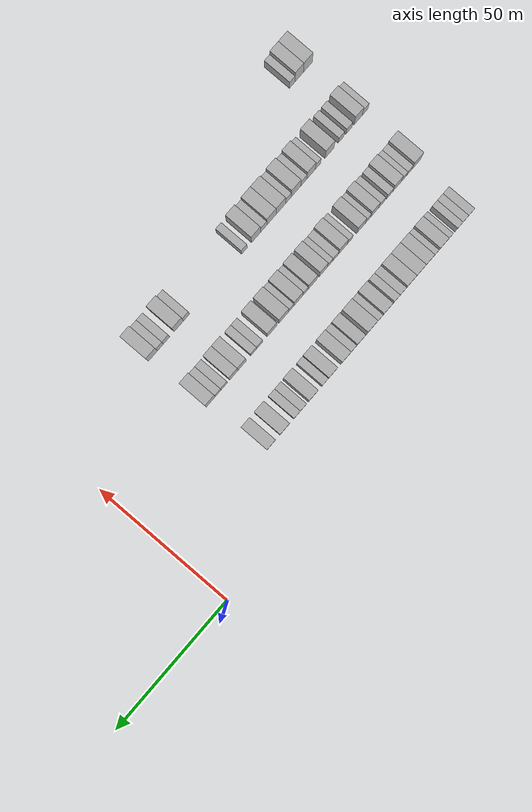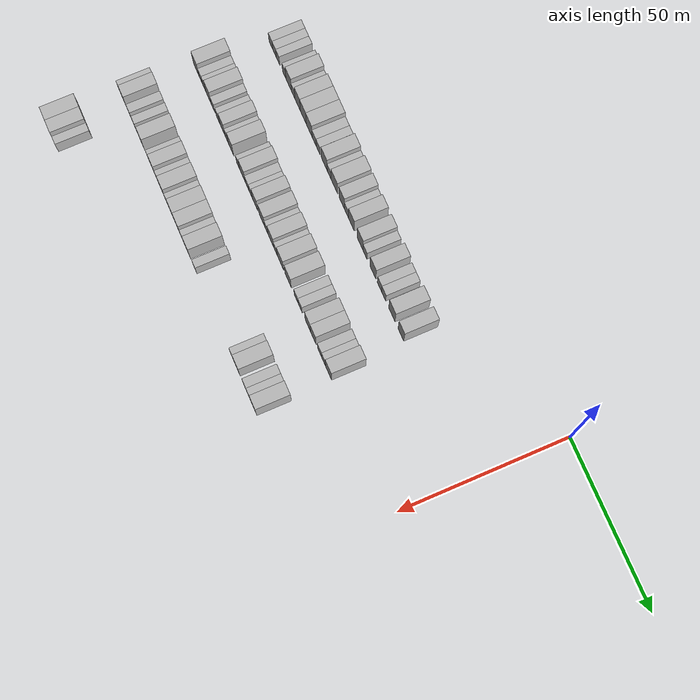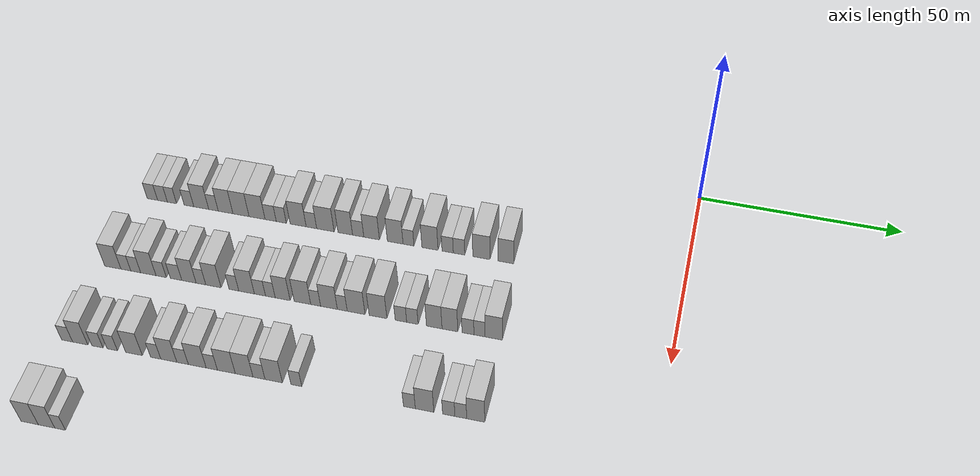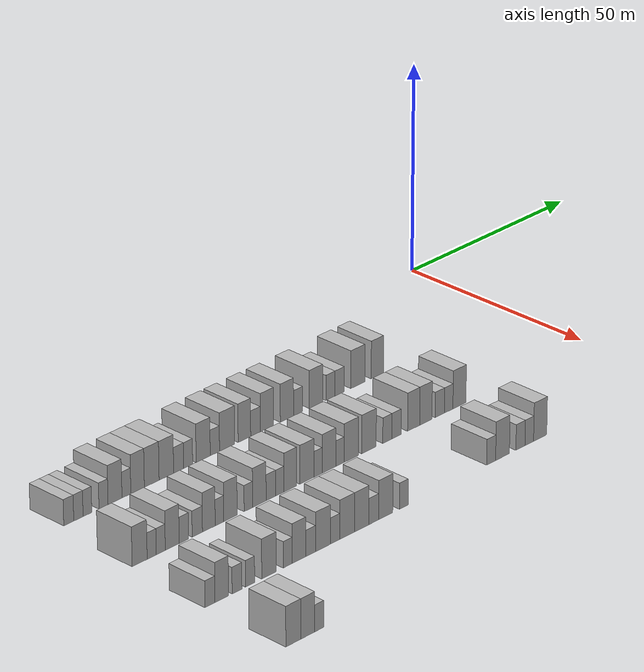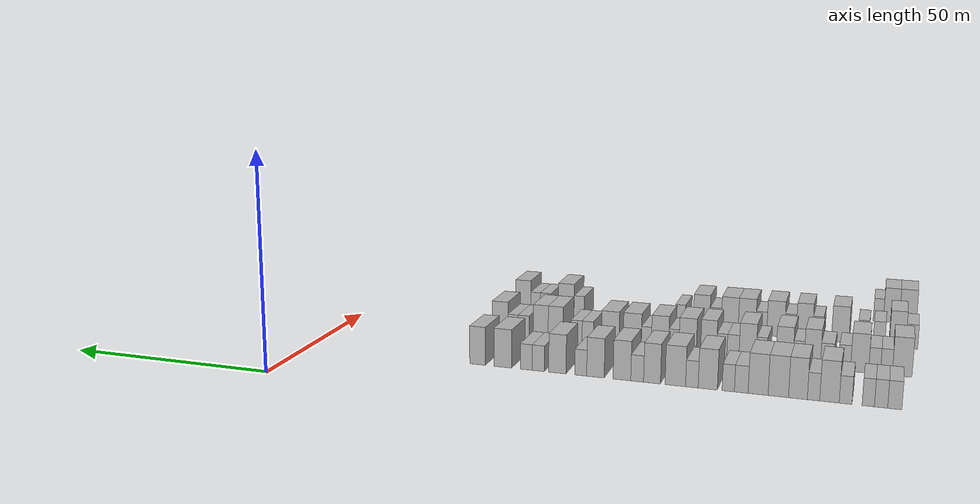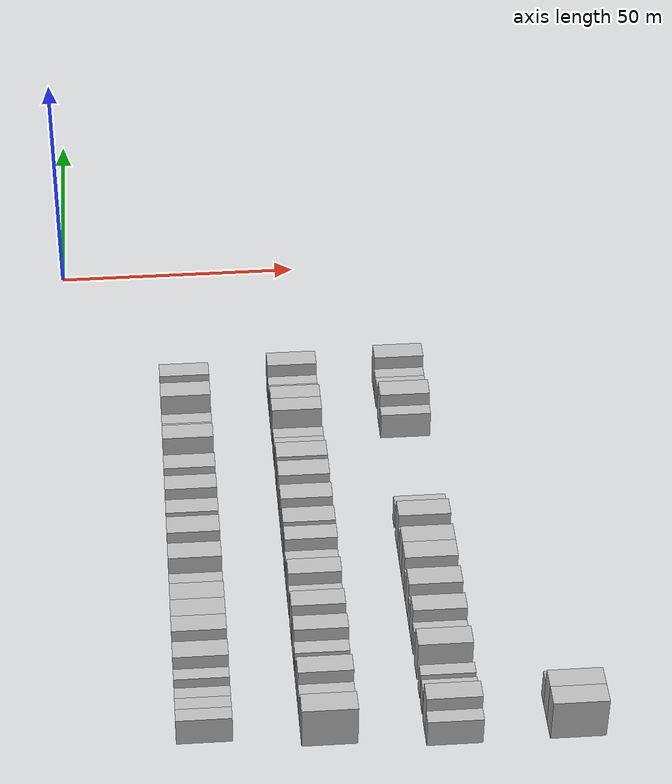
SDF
<sdf version="1.6">
 <world name="default">
  <model name="building_61">
   <static>1</static>
   <pose>25.0000 -133.7272 0 0.000000 0.000000 0.000000</pose>
   <link name="link">
    <pose>0 0 3.00 0 0 0</pose>
    <collision name="collision"><geometry><box><size>10.0000 2.7626 6.0000</size></box></geometry></collision>
    <visual name="visual">
     <cast_shadows>0</cast_shadows>
     <geometry><box><size>10.0000 2.7626 6.0000</size></box></geometry>
     <material>
      <script>
       <uri>model://HANNAS_wall/materials/scripts</uri>
       <uri>model://HANNAS_wall/materials/textures</uri>
       <name>vrc/HANNAS_wall</name>
      </script>
     </material>
    </visual>
   </link>
  </model>
  <model name="building_62">
   <static>1</static>
   <pose>25.0000 -131.0476 0 0.000000 0.000000 0.000000</pose>
   <link name="link">
    <pose>0 0 3.00 0 0 0</pose>
    <collision name="collision"><geometry><box><size>10.0000 2.5966 6.0000</size></box></geometry></collision>
    <visual name="visual">
     <cast_shadows>0</cast_shadows>
     <geometry><box><size>10.0000 2.5966 6.0000</size></box></geometry>
     <material>
      <script>
       <uri>model://HANNAS_wall/materials/scripts</uri>
       <uri>model://HANNAS_wall/materials/textures</uri>
       <name>vrc/HANNAS_wall</name>
      </script>
     </material>
    </visual>
   </link>
  </model>
  <model name="building_63">
   <static>1</static>
   <pose>25.0000 -128.5326 0 0.000000 0.000000 0.000000</pose>
   <link name="link">
    <pose>0 0 3.00 0 0 0</pose>
    <collision name="collision"><geometry><box><size>10.0000 2.4334 6.0000</size></box></geometry></collision>
    <visual name="visual">
     <cast_shadows>0</cast_shadows>
     <geometry><box><size>10.0000 2.4334 6.0000</size></box></geometry>
     <material>
      <script>
       <uri>model://HANNAS_wall/materials/scripts</uri>
       <uri>model://HANNAS_wall/materials/textures</uri>
       <name>vrc/HANNAS_wall</name>
      </script>
     </material>
    </visual>
   </link>
  </model>
  <model name="building_64">
   <static>1</static>
   <pose>25.0000 -124.0404 0 0.000000 0.000000 0.000000</pose>
   <link name="link">
    <pose>0 0 3.00 0 0 0</pose>
    <collision name="collision"><geometry><box><size>10.0000 2.5510 6.0000</size></box></geometry></collision>
    <visual name="visual">
     <cast_shadows>0</cast_shadows>
     <geometry><box><size>10.0000 2.5510 6.0000</size></box></geometry>
     <material>
      <script>
       <uri>model://HANNAS_wall/materials/scripts</uri>
       <uri>model://HANNAS_wall/materials/textures</uri>
       <name>vrc/HANNAS_wall</name>
      </script>
     </material>
    </visual>
   </link>
  </model>
  <model name="building_65">
   <static>1</static>
   <pose>25.0000 -120.8016 0 0.000000 0.000000 0.000000</pose>
   <link name="link">
    <pose>0 0 4.50 0 0 0</pose>
    <collision name="collision"><geometry><box><size>10.0000 3.9264 9.0000</size></box></geometry></collision>
    <visual name="visual">
     <cast_shadows>0</cast_shadows>
     <geometry><box><size>10.0000 3.9264 9.0000</size></box></geometry>
     <material>
      <script>
       <uri>model://HANNAS_wall/materials/scripts</uri>
       <uri>model://HANNAS_wall/materials/textures</uri>
       <name>vrc/HANNAS_wall</name>
      </script>
     </material>
    </visual>
   </link>
  </model>
  <model name="building_66">
   <static>1</static>
   <pose>25.0000 -117.5861 0 0.000000 0.000000 0.000000</pose>
   <link name="link">
    <pose>0 0 3.00 0 0 0</pose>
    <collision name="collision"><geometry><box><size>10.0000 2.5047 6.0000</size></box></geometry></collision>
    <visual name="visual">
     <cast_shadows>0</cast_shadows>
     <geometry><box><size>10.0000 2.5047 6.0000</size></box></geometry>
     <material>
      <script>
       <uri>model://HANNAS_wall/materials/scripts</uri>
       <uri>model://HANNAS_wall/materials/textures</uri>
       <name>vrc/HANNAS_wall</name>
      </script>
     </material>
    </visual>
   </link>
  </model>
  <model name="building_67">
   <static>1</static>
   <pose>25.0000 -114.4111 0 0.000000 0.000000 0.000000</pose>
   <link name="link">
    <pose>0 0 4.50 0 0 0</pose>
    <collision name="collision"><geometry><box><size>10.0000 3.8452 9.0000</size></box></geometry></collision>
    <visual name="visual">
     <cast_shadows>0</cast_shadows>
     <geometry><box><size>10.0000 3.8452 9.0000</size></box></geometry>
     <material>
      <script>
       <uri>model://HANNAS_wall/materials/scripts</uri>
       <uri>model://HANNAS_wall/materials/textures</uri>
       <name>vrc/HANNAS_wall</name>
      </script>
     </material>
    </visual>
   </link>
  </model>
  <model name="building_68">
   <static>1</static>
   <pose>25.0000 -110.3851 0 0.000000 0.000000 0.000000</pose>
   <link name="link">
    <pose>0 0 4.50 0 0 0</pose>
    <collision name="collision"><geometry><box><size>10.0000 4.2068 9.0000</size></box></geometry></collision>
    <visual name="visual">
     <cast_shadows>0</cast_shadows>
     <geometry><box><size>10.0000 4.2068 9.0000</size></box></geometry>
     <material>
      <script>
       <uri>model://HANNAS_wall/materials/scripts</uri>
       <uri>model://HANNAS_wall/materials/textures</uri>
       <name>vrc/HANNAS_wall</name>
      </script>
     </material>
    </visual>
   </link>
  </model>
  <model name="building_69">
   <static>1</static>
   <pose>25.0000 -106.1957 0 0.000000 0.000000 0.000000</pose>
   <link name="link">
    <pose>0 0 4.50 0 0 0</pose>
    <collision name="collision"><geometry><box><size>10.0000 4.1720 9.0000</size></box></geometry></collision>
    <visual name="visual">
     <cast_shadows>0</cast_shadows>
     <geometry><box><size>10.0000 4.1720 9.0000</size></box></geometry>
     <material>
      <script>
       <uri>model://HANNAS_wall/materials/scripts</uri>
       <uri>model://HANNAS_wall/materials/textures</uri>
       <name>vrc/HANNAS_wall</name>
      </script>
     </material>
    </visual>
   </link>
  </model>
  <model name="building_70">
   <static>1</static>
   <pose>25.0000 -102.6644 0 0.000000 0.000000 0.000000</pose>
   <link name="link">
    <pose>0 0 3.00 0 0 0</pose>
    <collision name="collision"><geometry><box><size>10.0000 2.8907 6.0000</size></box></geometry></collision>
    <visual name="visual">
     <cast_shadows>0</cast_shadows>
     <geometry><box><size>10.0000 2.8907 6.0000</size></box></geometry>
     <material>
      <script>
       <uri>model://HANNAS_wall/materials/scripts</uri>
       <uri>model://HANNAS_wall/materials/textures</uri>
       <name>vrc/HANNAS_wall</name>
      </script>
     </material>
    </visual>
   </link>
  </model>
  <model name="building_71">
   <static>1</static>
   <pose>25.0000 -99.9164 0 0.000000 0.000000 0.000000</pose>
   <link name="link">
    <pose>0 0 3.00 0 0 0</pose>
    <collision name="collision"><geometry><box><size>10.0000 2.6051 6.0000</size></box></geometry></collision>
    <visual name="visual">
     <cast_shadows>0</cast_shadows>
     <geometry><box><size>10.0000 2.6051 6.0000</size></box></geometry>
     <material>
      <script>
       <uri>model://HANNAS_wall/materials/scripts</uri>
       <uri>model://HANNAS_wall/materials/textures</uri>
       <name>vrc/HANNAS_wall</name>
      </script>
     </material>
    </visual>
   </link>
  </model>
  <model name="building_72">
   <static>1</static>
   <pose>25.0000 -95.5557 0 0.000000 0.000000 0.000000</pose>
   <link name="link">
    <pose>0 0 4.50 0 0 0</pose>
    <collision name="collision"><geometry><box><size>10.0000 4.1163 9.0000</size></box></geometry></collision>
    <visual name="visual">
     <cast_shadows>0</cast_shadows>
     <geometry><box><size>10.0000 4.1163 9.0000</size></box></geometry>
     <material>
      <script>
       <uri>model://HANNAS_wall/materials/scripts</uri>
       <uri>model://HANNAS_wall/materials/textures</uri>
       <name>vrc/HANNAS_wall</name>
      </script>
     </material>
    </visual>
   </link>
  </model>
  <model name="building_73">
   <static>1</static>
   <pose>25.0000 -92.1414 0 0.000000 0.000000 0.000000</pose>
   <link name="link">
    <pose>0 0 3.00 0 0 0</pose>
    <collision name="collision"><geometry><box><size>10.0000 2.7124 6.0000</size></box></geometry></collision>
    <visual name="visual">
     <cast_shadows>0</cast_shadows>
     <geometry><box><size>10.0000 2.7124 6.0000</size></box></geometry>
     <material>
      <script>
       <uri>model://HANNAS_wall/materials/scripts</uri>
       <uri>model://HANNAS_wall/materials/textures</uri>
       <name>vrc/HANNAS_wall</name>
      </script>
     </material>
    </visual>
   </link>
  </model>
  <model name="building_74">
   <static>1</static>
   <pose>25.0000 -88.5490 0 0.000000 0.000000 0.000000</pose>
   <link name="link">
    <pose>0 0 4.50 0 0 0</pose>
    <collision name="collision"><geometry><box><size>10.0000 4.4723 9.0000</size></box></geometry></collision>
    <visual name="visual">
     <cast_shadows>0</cast_shadows>
     <geometry><box><size>10.0000 4.4723 9.0000</size></box></geometry>
     <material>
      <script>
       <uri>model://HANNAS_wall/materials/scripts</uri>
       <uri>model://HANNAS_wall/materials/textures</uri>
       <name>vrc/HANNAS_wall</name>
      </script>
     </material>
    </visual>
   </link>
  </model>
  <model name="building_75">
   <static>1</static>
   <pose>25.0000 -83.4534 0 0.000000 0.000000 0.000000</pose>
   <link name="link">
    <pose>0 0 4.50 0 0 0</pose>
    <collision name="collision"><geometry><box><size>10.0000 3.7190 9.0000</size></box></geometry></collision>
    <visual name="visual">
     <cast_shadows>0</cast_shadows>
     <geometry><box><size>10.0000 3.7190 9.0000</size></box></geometry>
     <material>
      <script>
       <uri>model://HANNAS_wall/materials/scripts</uri>
       <uri>model://HANNAS_wall/materials/textures</uri>
       <name>vrc/HANNAS_wall</name>
      </script>
     </material>
    </visual>
   </link>
  </model>
  <model name="building_76">
   <static>1</static>
   <pose>25.0000 -80.1654 0 0.000000 0.000000 0.000000</pose>
   <link name="link">
    <pose>0 0 3.00 0 0 0</pose>
    <collision name="collision"><geometry><box><size>10.0000 2.8569 6.0000</size></box></geometry></collision>
    <visual name="visual">
     <cast_shadows>0</cast_shadows>
     <geometry><box><size>10.0000 2.8569 6.0000</size></box></geometry>
     <material>
      <script>
       <uri>model://HANNAS_wall/materials/scripts</uri>
       <uri>model://HANNAS_wall/materials/textures</uri>
       <name>vrc/HANNAS_wall</name>
      </script>
     </material>
    </visual>
   </link>
  </model>
  <model name="building_77">
   <static>1</static>
   <pose>25.0000 -76.7515 0 0.000000 0.000000 0.000000</pose>
   <link name="link">
    <pose>0 0 4.50 0 0 0</pose>
    <collision name="collision"><geometry><box><size>10.0000 3.9710 9.0000</size></box></geometry></collision>
    <visual name="visual">
     <cast_shadows>0</cast_shadows>
     <geometry><box><size>10.0000 3.9710 9.0000</size></box></geometry>
     <material>
      <script>
       <uri>model://HANNAS_wall/materials/scripts</uri>
       <uri>model://HANNAS_wall/materials/textures</uri>
       <name>vrc/HANNAS_wall</name>
      </script>
     </material>
    </visual>
   </link>
  </model>
  <model name="building_78">
   <static>1</static>
   <pose>25.0000 -70.7760 0 0.000000 0.000000 0.000000</pose>
   <link name="link">
    <pose>0 0 4.50 0 0 0</pose>
    <collision name="collision"><geometry><box><size>10.0000 3.9799 9.0000</size></box></geometry></collision>
    <visual name="visual">
     <cast_shadows>0</cast_shadows>
     <geometry><box><size>10.0000 3.9799 9.0000</size></box></geometry>
     <material>
      <script>
       <uri>model://HANNAS_wall/materials/scripts</uri>
       <uri>model://HANNAS_wall/materials/textures</uri>
       <name>vrc/HANNAS_wall</name>
      </script>
     </material>
    </visual>
   </link>
  </model>
  <model name="building_79">
   <static>1</static>
   <pose>25.0000 -67.4149 0 0.000000 0.000000 0.000000</pose>
   <link name="link">
    <pose>0 0 3.00 0 0 0</pose>
    <collision name="collision"><geometry><box><size>10.0000 2.7422 6.0000</size></box></geometry></collision>
    <visual name="visual">
     <cast_shadows>0</cast_shadows>
     <geometry><box><size>10.0000 2.7422 6.0000</size></box></geometry>
     <material>
      <script>
       <uri>model://HANNAS_wall/materials/scripts</uri>
       <uri>model://HANNAS_wall/materials/textures</uri>
       <name>vrc/HANNAS_wall</name>
      </script>
     </material>
    </visual>
   </link>
  </model>
  <model name="building_80">
   <static>1</static>
   <pose>25.0000 -62.0194 0 0.000000 0.000000 0.000000</pose>
   <link name="link">
    <pose>0 0 4.50 0 0 0</pose>
    <collision name="collision"><geometry><box><size>10.0000 4.0489 9.0000</size></box></geometry></collision>
    <visual name="visual">
     <cast_shadows>0</cast_shadows>
     <geometry><box><size>10.0000 4.0489 9.0000</size></box></geometry>
     <material>
      <script>
       <uri>model://HANNAS_wall/materials/scripts</uri>
       <uri>model://HANNAS_wall/materials/textures</uri>
       <name>vrc/HANNAS_wall</name>
      </script>
     </material>
    </visual>
   </link>
  </model>
  <model name="building_81">
   <static>1</static>
   <pose>25.0000 -57.5845 0 0.000000 0.000000 0.000000</pose>
   <link name="link">
    <pose>0 0 3.00 0 0 0</pose>
    <collision name="collision"><geometry><box><size>10.0000 2.8207 6.0000</size></box></geometry></collision>
    <visual name="visual">
     <cast_shadows>0</cast_shadows>
     <geometry><box><size>10.0000 2.8207 6.0000</size></box></geometry>
     <material>
      <script>
       <uri>model://HANNAS_wall/materials/scripts</uri>
       <uri>model://HANNAS_wall/materials/textures</uri>
       <name>vrc/HANNAS_wall</name>
      </script>
     </material>
    </visual>
   </link>
  </model>
  <model name="building_82">
   <static>1</static>
   <pose>25.0000 -54.7447 0 0.000000 0.000000 0.000000</pose>
   <link name="link">
    <pose>0 0 3.00 0 0 0</pose>
    <collision name="collision"><geometry><box><size>10.0000 2.8589 6.0000</size></box></geometry></collision>
    <visual name="visual">
     <cast_shadows>0</cast_shadows>
     <geometry><box><size>10.0000 2.8589 6.0000</size></box></geometry>
     <material>
      <script>
       <uri>model://HANNAS_wall/materials/scripts</uri>
       <uri>model://HANNAS_wall/materials/textures</uri>
       <name>vrc/HANNAS_wall</name>
      </script>
     </material>
    </visual>
   </link>
  </model>
  <model name="building_83">
   <static>1</static>
   <pose>25.0000 -49.1723 0 0.000000 0.000000 0.000000</pose>
   <link name="link">
    <pose>0 0 4.50 0 0 0</pose>
    <collision name="collision"><geometry><box><size>10.0000 4.2861 9.0000</size></box></geometry></collision>
    <visual name="visual">
     <cast_shadows>0</cast_shadows>
     <geometry><box><size>10.0000 4.2861 9.0000</size></box></geometry>
     <material>
      <script>
       <uri>model://HANNAS_wall/materials/scripts</uri>
       <uri>model://HANNAS_wall/materials/textures</uri>
       <name>vrc/HANNAS_wall</name>
      </script>
     </material>
    </visual>
   </link>
  </model>
  <model name="building_84">
   <static>1</static>
   <pose>25.0000 -43.1173 0 0.000000 0.000000 0.000000</pose>
   <link name="link">
    <pose>0 0 4.50 0 0 0</pose>
    <collision name="collision"><geometry><box><size>10.0000 3.8238 9.0000</size></box></geometry></collision>
    <visual name="visual">
     <cast_shadows>0</cast_shadows>
     <geometry><box><size>10.0000 3.8238 9.0000</size></box></geometry>
     <material>
      <script>
       <uri>model://HANNAS_wall/materials/scripts</uri>
       <uri>model://HANNAS_wall/materials/textures</uri>
       <name>vrc/HANNAS_wall</name>
      </script>
     </material>
    </visual>
   </link>
  </model>
  <model name="building_236">
   <static>1</static>
   <pose>47.0000 -135.1184 0 0.000000 0.000000 0.000000</pose>
   <link name="link">
    <pose>0 0 4.50 0 0 0</pose>
    <collision name="collision"><geometry><box><size>10.0000 4.1535 9.0000</size></box></geometry></collision>
    <visual name="visual">
     <cast_shadows>0</cast_shadows>
     <geometry><box><size>10.0000 4.1535 9.0000</size></box></geometry>
     <material>
      <script>
       <uri>model://HANNAS_wall/materials/scripts</uri>
       <uri>model://HANNAS_wall/materials/textures</uri>
       <name>vrc/HANNAS_wall</name>
      </script>
     </material>
    </visual>
   </link>
  </model>
  <model name="building_237">
   <static>1</static>
   <pose>47.0000 -131.7829 0 0.000000 0.000000 0.000000</pose>
   <link name="link">
    <pose>0 0 3.00 0 0 0</pose>
    <collision name="collision"><geometry><box><size>10.0000 2.5176 6.0000</size></box></geometry></collision>
    <visual name="visual">
     <cast_shadows>0</cast_shadows>
     <geometry><box><size>10.0000 2.5176 6.0000</size></box></geometry>
     <material>
      <script>
       <uri>model://HANNAS_wall/materials/scripts</uri>
       <uri>model://HANNAS_wall/materials/textures</uri>
       <name>vrc/HANNAS_wall</name>
      </script>
     </material>
    </visual>
   </link>
  </model>
  <model name="building_238">
   <static>1</static>
   <pose>47.0000 -129.2609 0 0.000000 0.000000 0.000000</pose>
   <link name="link">
    <pose>0 0 3.00 0 0 0</pose>
    <collision name="collision"><geometry><box><size>10.0000 2.5264 6.0000</size></box></geometry></collision>
    <visual name="visual">
     <cast_shadows>0</cast_shadows>
     <geometry><box><size>10.0000 2.5264 6.0000</size></box></geometry>
     <material>
      <script>
       <uri>model://HANNAS_wall/materials/scripts</uri>
       <uri>model://HANNAS_wall/materials/textures</uri>
       <name>vrc/HANNAS_wall</name>
      </script>
     </material>
    </visual>
   </link>
  </model>
  <model name="building_239">
   <static>1</static>
   <pose>47.0000 -126.0531 0 0.000000 0.000000 0.000000</pose>
   <link name="link">
    <pose>0 0 4.50 0 0 0</pose>
    <collision name="collision"><geometry><box><size>10.0000 3.8892 9.0000</size></box></geometry></collision>
    <visual name="visual">
     <cast_shadows>0</cast_shadows>
     <geometry><box><size>10.0000 3.8892 9.0000</size></box></geometry>
     <material>
      <script>
       <uri>model://HANNAS_wall/materials/scripts</uri>
       <uri>model://HANNAS_wall/materials/textures</uri>
       <name>vrc/HANNAS_wall</name>
      </script>
     </material>
    </visual>
   </link>
  </model>
  <model name="building_240">
   <static>1</static>
   <pose>47.0000 -122.7889 0 0.000000 0.000000 0.000000</pose>
   <link name="link">
    <pose>0 0 3.00 0 0 0</pose>
    <collision name="collision"><geometry><box><size>10.0000 2.6392 6.0000</size></box></geometry></collision>
    <visual name="visual">
     <cast_shadows>0</cast_shadows>
     <geometry><box><size>10.0000 2.6392 6.0000</size></box></geometry>
     <material>
      <script>
       <uri>model://HANNAS_wall/materials/scripts</uri>
       <uri>model://HANNAS_wall/materials/textures</uri>
       <name>vrc/HANNAS_wall</name>
      </script>
     </material>
    </visual>
   </link>
  </model>
  <model name="building_241">
   <static>1</static>
   <pose>47.0000 -119.0150 0 0.000000 0.000000 0.000000</pose>
   <link name="link">
    <pose>0 0 3.00 0 0 0</pose>
    <collision name="collision"><geometry><box><size>10.0000 2.9087 6.0000</size></box></geometry></collision>
    <visual name="visual">
     <cast_shadows>0</cast_shadows>
     <geometry><box><size>10.0000 2.9087 6.0000</size></box></geometry>
     <material>
      <script>
       <uri>model://HANNAS_wall/materials/scripts</uri>
       <uri>model://HANNAS_wall/materials/textures</uri>
       <name>vrc/HANNAS_wall</name>
      </script>
     </material>
    </visual>
   </link>
  </model>
  <model name="building_242">
   <static>1</static>
   <pose>47.0000 -115.7509 0 0.000000 0.000000 0.000000</pose>
   <link name="link">
    <pose>0 0 4.50 0 0 0</pose>
    <collision name="collision"><geometry><box><size>10.0000 3.6196 9.0000</size></box></geometry></collision>
    <visual name="visual">
     <cast_shadows>0</cast_shadows>
     <geometry><box><size>10.0000 3.6196 9.0000</size></box></geometry>
     <material>
      <script>
       <uri>model://HANNAS_wall/materials/scripts</uri>
       <uri>model://HANNAS_wall/materials/textures</uri>
       <name>vrc/HANNAS_wall</name>
      </script>
     </material>
    </visual>
   </link>
  </model>
  <model name="building_243">
   <static>1</static>
   <pose>47.0000 -112.7212 0 0.000000 0.000000 0.000000</pose>
   <link name="link">
    <pose>0 0 3.00 0 0 0</pose>
    <collision name="collision"><geometry><box><size>10.0000 2.4398 6.0000</size></box></geometry></collision>
    <visual name="visual">
     <cast_shadows>0</cast_shadows>
     <geometry><box><size>10.0000 2.4398 6.0000</size></box></geometry>
     <material>
      <script>
       <uri>model://HANNAS_wall/materials/scripts</uri>
       <uri>model://HANNAS_wall/materials/textures</uri>
       <name>vrc/HANNAS_wall</name>
      </script>
     </material>
    </visual>
   </link>
  </model>
  <model name="building_244">
   <static>1</static>
   <pose>47.0000 -109.5826 0 0.000000 0.000000 0.000000</pose>
   <link name="link">
    <pose>0 0 4.50 0 0 0</pose>
    <collision name="collision"><geometry><box><size>10.0000 3.8373 9.0000</size></box></geometry></collision>
    <visual name="visual">
     <cast_shadows>0</cast_shadows>
     <geometry><box><size>10.0000 3.8373 9.0000</size></box></geometry>
     <material>
      <script>
       <uri>model://HANNAS_wall/materials/scripts</uri>
       <uri>model://HANNAS_wall/materials/textures</uri>
       <name>vrc/HANNAS_wall</name>
      </script>
     </material>
    </visual>
   </link>
  </model>
  <model name="building_245">
   <static>1</static>
   <pose>47.0000 -104.4472 0 0.000000 0.000000 0.000000</pose>
   <link name="link">
    <pose>0 0 3.00 0 0 0</pose>
    <collision name="collision"><geometry><box><size>10.0000 2.4336 6.0000</size></box></geometry></collision>
    <visual name="visual">
     <cast_shadows>0</cast_shadows>
     <geometry><box><size>10.0000 2.4336 6.0000</size></box></geometry>
     <material>
      <script>
       <uri>model://HANNAS_wall/materials/scripts</uri>
       <uri>model://HANNAS_wall/materials/textures</uri>
       <name>vrc/HANNAS_wall</name>
      </script>
     </material>
    </visual>
   </link>
  </model>
  <model name="building_246">
   <static>1</static>
   <pose>47.0000 -101.2721 0 0.000000 0.000000 0.000000</pose>
   <link name="link">
    <pose>0 0 4.50 0 0 0</pose>
    <collision name="collision"><geometry><box><size>10.0000 3.9166 9.0000</size></box></geometry></collision>
    <visual name="visual">
     <cast_shadows>0</cast_shadows>
     <geometry><box><size>10.0000 3.9166 9.0000</size></box></geometry>
     <material>
      <script>
       <uri>model://HANNAS_wall/materials/scripts</uri>
       <uri>model://HANNAS_wall/materials/textures</uri>
       <name>vrc/HANNAS_wall</name>
      </script>
     </material>
    </visual>
   </link>
  </model>
  <model name="building_247">
   <static>1</static>
   <pose>47.0000 -97.9320 0 0.000000 0.000000 0.000000</pose>
   <link name="link">
    <pose>0 0 3.00 0 0 0</pose>
    <collision name="collision"><geometry><box><size>10.0000 2.7636 6.0000</size></box></geometry></collision>
    <visual name="visual">
     <cast_shadows>0</cast_shadows>
     <geometry><box><size>10.0000 2.7636 6.0000</size></box></geometry>
     <material>
      <script>
       <uri>model://HANNAS_wall/materials/scripts</uri>
       <uri>model://HANNAS_wall/materials/textures</uri>
       <name>vrc/HANNAS_wall</name>
      </script>
     </material>
    </visual>
   </link>
  </model>
  <model name="building_248">
   <static>1</static>
   <pose>47.0000 -95.3484 0 0.000000 0.000000 0.000000</pose>
   <link name="link">
    <pose>0 0 3.00 0 0 0</pose>
    <collision name="collision"><geometry><box><size>10.0000 2.4037 6.0000</size></box></geometry></collision>
    <visual name="visual">
     <cast_shadows>0</cast_shadows>
     <geometry><box><size>10.0000 2.4037 6.0000</size></box></geometry>
     <material>
      <script>
       <uri>model://HANNAS_wall/materials/scripts</uri>
       <uri>model://HANNAS_wall/materials/textures</uri>
       <name>vrc/HANNAS_wall</name>
      </script>
     </material>
    </visual>
   </link>
  </model>
  <model name="building_249">
   <static>1</static>
   <pose>47.0000 -92.3021 0 0.000000 0.000000 0.000000</pose>
   <link name="link">
    <pose>0 0 4.50 0 0 0</pose>
    <collision name="collision"><geometry><box><size>10.0000 3.6888 9.0000</size></box></geometry></collision>
    <visual name="visual">
     <cast_shadows>0</cast_shadows>
     <geometry><box><size>10.0000 3.6888 9.0000</size></box></geometry>
     <material>
      <script>
       <uri>model://HANNAS_wall/materials/scripts</uri>
       <uri>model://HANNAS_wall/materials/textures</uri>
       <name>vrc/HANNAS_wall</name>
      </script>
     </material>
    </visual>
   </link>
  </model>
  <model name="building_250">
   <static>1</static>
   <pose>47.0000 -87.4121 0 0.000000 0.000000 0.000000</pose>
   <link name="link">
    <pose>0 0 4.50 0 0 0</pose>
    <collision name="collision"><geometry><box><size>10.0000 4.0912 9.0000</size></box></geometry></collision>
    <visual name="visual">
     <cast_shadows>0</cast_shadows>
     <geometry><box><size>10.0000 4.0912 9.0000</size></box></geometry>
     <material>
      <script>
       <uri>model://HANNAS_wall/materials/scripts</uri>
       <uri>model://HANNAS_wall/materials/textures</uri>
       <name>vrc/HANNAS_wall</name>
      </script>
     </material>
    </visual>
   </link>
  </model>
  <model name="building_251">
   <static>1</static>
   <pose>47.0000 -84.1532 0 0.000000 0.000000 0.000000</pose>
   <link name="link">
    <pose>0 0 3.00 0 0 0</pose>
    <collision name="collision"><geometry><box><size>10.0000 2.4267 6.0000</size></box></geometry></collision>
    <visual name="visual">
     <cast_shadows>0</cast_shadows>
     <geometry><box><size>10.0000 2.4267 6.0000</size></box></geometry>
     <material>
      <script>
       <uri>model://HANNAS_wall/materials/scripts</uri>
       <uri>model://HANNAS_wall/materials/textures</uri>
       <name>vrc/HANNAS_wall</name>
      </script>
     </material>
    </visual>
   </link>
  </model>
  <model name="building_252">
   <static>1</static>
   <pose>47.0000 -80.8879 0 0.000000 0.000000 0.000000</pose>
   <link name="link">
    <pose>0 0 4.50 0 0 0</pose>
    <collision name="collision"><geometry><box><size>10.0000 4.1038 9.0000</size></box></geometry></collision>
    <visual name="visual">
     <cast_shadows>0</cast_shadows>
     <geometry><box><size>10.0000 4.1038 9.0000</size></box></geometry>
     <material>
      <script>
       <uri>model://HANNAS_wall/materials/scripts</uri>
       <uri>model://HANNAS_wall/materials/textures</uri>
       <name>vrc/HANNAS_wall</name>
      </script>
     </material>
    </visual>
   </link>
  </model>
  <model name="building_253">
   <static>1</static>
   <pose>47.0000 -77.6274 0 0.000000 0.000000 0.000000</pose>
   <link name="link">
    <pose>0 0 3.00 0 0 0</pose>
    <collision name="collision"><geometry><box><size>10.0000 2.4171 6.0000</size></box></geometry></collision>
    <visual name="visual">
     <cast_shadows>0</cast_shadows>
     <geometry><box><size>10.0000 2.4171 6.0000</size></box></geometry>
     <material>
      <script>
       <uri>model://HANNAS_wall/materials/scripts</uri>
       <uri>model://HANNAS_wall/materials/textures</uri>
       <name>vrc/HANNAS_wall</name>
      </script>
     </material>
    </visual>
   </link>
  </model>
  <model name="building_254">
   <static>1</static>
   <pose>47.0000 -74.2368 0 0.000000 0.000000 0.000000</pose>
   <link name="link">
    <pose>0 0 4.50 0 0 0</pose>
    <collision name="collision"><geometry><box><size>10.0000 4.3643 9.0000</size></box></geometry></collision>
    <visual name="visual">
     <cast_shadows>0</cast_shadows>
     <geometry><box><size>10.0000 4.3643 9.0000</size></box></geometry>
     <material>
      <script>
       <uri>model://HANNAS_wall/materials/scripts</uri>
       <uri>model://HANNAS_wall/materials/textures</uri>
       <name>vrc/HANNAS_wall</name>
      </script>
     </material>
    </visual>
   </link>
  </model>
  <model name="building_255">
   <static>1</static>
   <pose>47.0000 -68.8947 0 0.000000 0.000000 0.000000</pose>
   <link name="link">
    <pose>0 0 4.50 0 0 0</pose>
    <collision name="collision"><geometry><box><size>10.0000 4.3200 9.0000</size></box></geometry></collision>
    <visual name="visual">
     <cast_shadows>0</cast_shadows>
     <geometry><box><size>10.0000 4.3200 9.0000</size></box></geometry>
     <material>
      <script>
       <uri>model://HANNAS_wall/materials/scripts</uri>
       <uri>model://HANNAS_wall/materials/textures</uri>
       <name>vrc/HANNAS_wall</name>
      </script>
     </material>
    </visual>
   </link>
  </model>
  <model name="building_256">
   <static>1</static>
   <pose>47.0000 -63.3446 0 0.000000 0.000000 0.000000</pose>
   <link name="link">
    <pose>0 0 3.00 0 0 0</pose>
    <collision name="collision"><geometry><box><size>10.0000 2.7802 6.0000</size></box></geometry></collision>
    <visual name="visual">
     <cast_shadows>0</cast_shadows>
     <geometry><box><size>10.0000 2.7802 6.0000</size></box></geometry>
     <material>
      <script>
       <uri>model://HANNAS_wall/materials/scripts</uri>
       <uri>model://HANNAS_wall/materials/textures</uri>
       <name>vrc/HANNAS_wall</name>
      </script>
     </material>
    </visual>
   </link>
  </model>
  <model name="building_257">
   <static>1</static>
   <pose>47.0000 -60.5730 0 0.000000 0.000000 0.000000</pose>
   <link name="link">
    <pose>0 0 3.00 0 0 0</pose>
    <collision name="collision"><geometry><box><size>10.0000 2.7631 6.0000</size></box></geometry></collision>
    <visual name="visual">
     <cast_shadows>0</cast_shadows>
     <geometry><box><size>10.0000 2.7631 6.0000</size></box></geometry>
     <material>
      <script>
       <uri>model://HANNAS_wall/materials/scripts</uri>
       <uri>model://HANNAS_wall/materials/textures</uri>
       <name>vrc/HANNAS_wall</name>
      </script>
     </material>
    </visual>
   </link>
  </model>
  <model name="building_258">
   <static>1</static>
   <pose>47.0000 -55.3226 0 0.000000 0.000000 0.000000</pose>
   <link name="link">
    <pose>0 0 4.50 0 0 0</pose>
    <collision name="collision"><geometry><box><size>10.0000 3.7377 9.0000</size></box></geometry></collision>
    <visual name="visual">
     <cast_shadows>0</cast_shadows>
     <geometry><box><size>10.0000 3.7377 9.0000</size></box></geometry>
     <material>
      <script>
       <uri>model://HANNAS_wall/materials/scripts</uri>
       <uri>model://HANNAS_wall/materials/textures</uri>
       <name>vrc/HANNAS_wall</name>
      </script>
     </material>
    </visual>
   </link>
  </model>
  <model name="building_259">
   <static>1</static>
   <pose>47.0000 -51.5637 0 0.000000 0.000000 0.000000</pose>
   <link name="link">
    <pose>0 0 4.50 0 0 0</pose>
    <collision name="collision"><geometry><box><size>10.0000 3.7800 9.0000</size></box></geometry></collision>
    <visual name="visual">
     <cast_shadows>0</cast_shadows>
     <geometry><box><size>10.0000 3.7800 9.0000</size></box></geometry>
     <material>
      <script>
       <uri>model://HANNAS_wall/materials/scripts</uri>
       <uri>model://HANNAS_wall/materials/textures</uri>
       <name>vrc/HANNAS_wall</name>
      </script>
     </material>
    </visual>
   </link>
  </model>
  <model name="building_260">
   <static>1</static>
   <pose>47.0000 -47.2487 0 0.000000 0.000000 0.000000</pose>
   <link name="link">
    <pose>0 0 3.00 0 0 0</pose>
    <collision name="collision"><geometry><box><size>10.0000 2.8500 6.0000</size></box></geometry></collision>
    <visual name="visual">
     <cast_shadows>0</cast_shadows>
     <geometry><box><size>10.0000 2.8500 6.0000</size></box></geometry>
     <material>
      <script>
       <uri>model://HANNAS_wall/materials/scripts</uri>
       <uri>model://HANNAS_wall/materials/textures</uri>
       <name>vrc/HANNAS_wall</name>
      </script>
     </material>
    </visual>
   </link>
  </model>
  <model name="building_261">
   <static>1</static>
   <pose>47.0000 -44.4979 0 0.000000 0.000000 0.000000</pose>
   <link name="link">
    <pose>0 0 3.00 0 0 0</pose>
    <collision name="collision"><geometry><box><size>10.0000 2.6516 6.0000</size></box></geometry></collision>
    <visual name="visual">
     <cast_shadows>0</cast_shadows>
     <geometry><box><size>10.0000 2.6516 6.0000</size></box></geometry>
     <material>
      <script>
       <uri>model://HANNAS_wall/materials/scripts</uri>
       <uri>model://HANNAS_wall/materials/textures</uri>
       <name>vrc/HANNAS_wall</name>
      </script>
     </material>
    </visual>
   </link>
  </model>
  <model name="building_262">
   <static>1</static>
   <pose>47.0000 -41.1345 0 0.000000 0.000000 0.000000</pose>
   <link name="link">
    <pose>0 0 4.50 0 0 0</pose>
    <collision name="collision"><geometry><box><size>10.0000 4.0752 9.0000</size></box></geometry></collision>
    <visual name="visual">
     <cast_shadows>0</cast_shadows>
     <geometry><box><size>10.0000 4.0752 9.0000</size></box></geometry>
     <material>
      <script>
       <uri>model://HANNAS_wall/materials/scripts</uri>
       <uri>model://HANNAS_wall/materials/textures</uri>
       <name>vrc/HANNAS_wall</name>
      </script>
     </material>
    </visual>
   </link>
  </model>
  <model name="building_422">
   <static>1</static>
   <pose>69.0000 -137.2578 0 0.000000 0.000000 0.000000</pose>
   <link name="link">
    <pose>0 0 3.00 0 0 0</pose>
    <collision name="collision"><geometry><box><size>10.0000 2.7330 6.0000</size></box></geometry></collision>
    <visual name="visual">
     <cast_shadows>0</cast_shadows>
     <geometry><box><size>10.0000 2.7330 6.0000</size></box></geometry>
     <material>
      <script>
       <uri>model://HANNAS_wall/materials/scripts</uri>
       <uri>model://HANNAS_wall/materials/textures</uri>
       <name>vrc/HANNAS_wall</name>
      </script>
     </material>
    </visual>
   </link>
  </model>
  <model name="building_423">
   <static>1</static>
   <pose>69.0000 -134.0192 0 0.000000 0.000000 0.000000</pose>
   <link name="link">
    <pose>0 0 4.50 0 0 0</pose>
    <collision name="collision"><geometry><box><size>10.0000 3.7442 9.0000</size></box></geometry></collision>
    <visual name="visual">
     <cast_shadows>0</cast_shadows>
     <geometry><box><size>10.0000 3.7442 9.0000</size></box></geometry>
     <material>
      <script>
       <uri>model://HANNAS_wall/materials/scripts</uri>
       <uri>model://HANNAS_wall/materials/textures</uri>
       <name>vrc/HANNAS_wall</name>
      </script>
     </material>
    </visual>
   </link>
  </model>
  <model name="building_424">
   <static>1</static>
   <pose>69.0000 -129.7842 0 0.000000 0.000000 0.000000</pose>
   <link name="link">
    <pose>0 0 3.00 0 0 0</pose>
    <collision name="collision"><geometry><box><size>10.0000 2.7257 6.0000</size></box></geometry></collision>
    <visual name="visual">
     <cast_shadows>0</cast_shadows>
     <geometry><box><size>10.0000 2.7257 6.0000</size></box></geometry>
     <material>
      <script>
       <uri>model://HANNAS_wall/materials/scripts</uri>
       <uri>model://HANNAS_wall/materials/textures</uri>
       <name>vrc/HANNAS_wall</name>
      </script>
     </material>
    </visual>
   </link>
  </model>
  <model name="building_425">
   <static>1</static>
   <pose>69.0000 -126.1419 0 0.000000 0.000000 0.000000</pose>
   <link name="link">
    <pose>0 0 3.00 0 0 0</pose>
    <collision name="collision"><geometry><box><size>10.0000 2.5589 6.0000</size></box></geometry></collision>
    <visual name="visual">
     <cast_shadows>0</cast_shadows>
     <geometry><box><size>10.0000 2.5589 6.0000</size></box></geometry>
     <material>
      <script>
       <uri>model://HANNAS_wall/materials/scripts</uri>
       <uri>model://HANNAS_wall/materials/textures</uri>
       <name>vrc/HANNAS_wall</name>
      </script>
     </material>
    </visual>
   </link>
  </model>
  <model name="building_426">
   <static>1</static>
   <pose>69.0000 -120.8157 0 0.000000 0.000000 0.000000</pose>
   <link name="link">
    <pose>0 0 4.50 0 0 0</pose>
    <collision name="collision"><geometry><box><size>10.0000 4.0937 9.0000</size></box></geometry></collision>
    <visual name="visual">
     <cast_shadows>0</cast_shadows>
     <geometry><box><size>10.0000 4.0937 9.0000</size></box></geometry>
     <material>
      <script>
       <uri>model://HANNAS_wall/materials/scripts</uri>
       <uri>model://HANNAS_wall/materials/textures</uri>
       <name>vrc/HANNAS_wall</name>
      </script>
     </material>
    </visual>
   </link>
  </model>
  <model name="building_427">
   <static>1</static>
   <pose>69.0000 -115.5175 0 0.000000 0.000000 0.000000</pose>
   <link name="link">
    <pose>0 0 3.00 0 0 0</pose>
    <collision name="collision"><geometry><box><size>10.0000 2.5026 6.0000</size></box></geometry></collision>
    <visual name="visual">
     <cast_shadows>0</cast_shadows>
     <geometry><box><size>10.0000 2.5026 6.0000</size></box></geometry>
     <material>
      <script>
       <uri>model://HANNAS_wall/materials/scripts</uri>
       <uri>model://HANNAS_wall/materials/textures</uri>
       <name>vrc/HANNAS_wall</name>
      </script>
     </material>
    </visual>
   </link>
  </model>
  <model name="building_428">
   <static>1</static>
   <pose>69.0000 -112.3209 0 0.000000 0.000000 0.000000</pose>
   <link name="link">
    <pose>0 0 4.50 0 0 0</pose>
    <collision name="collision"><geometry><box><size>10.0000 3.8907 9.0000</size></box></geometry></collision>
    <visual name="visual">
     <cast_shadows>0</cast_shadows>
     <geometry><box><size>10.0000 3.8907 9.0000</size></box></geometry>
     <material>
      <script>
       <uri>model://HANNAS_wall/materials/scripts</uri>
       <uri>model://HANNAS_wall/materials/textures</uri>
       <name>vrc/HANNAS_wall</name>
      </script>
     </material>
    </visual>
   </link>
  </model>
  <model name="building_429">
   <static>1</static>
   <pose>69.0000 -108.9866 0 0.000000 0.000000 0.000000</pose>
   <link name="link">
    <pose>0 0 3.00 0 0 0</pose>
    <collision name="collision"><geometry><box><size>10.0000 2.7777 6.0000</size></box></geometry></collision>
    <visual name="visual">
     <cast_shadows>0</cast_shadows>
     <geometry><box><size>10.0000 2.7777 6.0000</size></box></geometry>
     <material>
      <script>
       <uri>model://HANNAS_wall/materials/scripts</uri>
       <uri>model://HANNAS_wall/materials/textures</uri>
       <name>vrc/HANNAS_wall</name>
      </script>
     </material>
    </visual>
   </link>
  </model>
  <model name="building_430">
   <static>1</static>
   <pose>69.0000 -105.4510 0 0.000000 0.000000 0.000000</pose>
   <link name="link">
    <pose>0 0 4.50 0 0 0</pose>
    <collision name="collision"><geometry><box><size>10.0000 4.2936 9.0000</size></box></geometry></collision>
    <visual name="visual">
     <cast_shadows>0</cast_shadows>
     <geometry><box><size>10.0000 4.2936 9.0000</size></box></geometry>
     <material>
      <script>
       <uri>model://HANNAS_wall/materials/scripts</uri>
       <uri>model://HANNAS_wall/materials/textures</uri>
       <name>vrc/HANNAS_wall</name>
      </script>
     </material>
    </visual>
   </link>
  </model>
  <model name="building_431">
   <static>1</static>
   <pose>69.0000 -101.9489 0 0.000000 0.000000 0.000000</pose>
   <link name="link">
    <pose>0 0 3.00 0 0 0</pose>
    <collision name="collision"><geometry><box><size>10.0000 2.7105 6.0000</size></box></geometry></collision>
    <visual name="visual">
     <cast_shadows>0</cast_shadows>
     <geometry><box><size>10.0000 2.7105 6.0000</size></box></geometry>
     <material>
      <script>
       <uri>model://HANNAS_wall/materials/scripts</uri>
       <uri>model://HANNAS_wall/materials/textures</uri>
       <name>vrc/HANNAS_wall</name>
      </script>
     </material>
    </visual>
   </link>
  </model>
  <model name="building_432">
   <static>1</static>
   <pose>69.0000 -98.4530 0 0.000000 0.000000 0.000000</pose>
   <link name="link">
    <pose>0 0 4.50 0 0 0</pose>
    <collision name="collision"><geometry><box><size>10.0000 4.2813 9.0000</size></box></geometry></collision>
    <visual name="visual">
     <cast_shadows>0</cast_shadows>
     <geometry><box><size>10.0000 4.2813 9.0000</size></box></geometry>
     <material>
      <script>
       <uri>model://HANNAS_wall/materials/scripts</uri>
       <uri>model://HANNAS_wall/materials/textures</uri>
       <name>vrc/HANNAS_wall</name>
      </script>
     </material>
    </visual>
   </link>
  </model>
  <model name="building_433">
   <static>1</static>
   <pose>69.0000 -94.2004 0 0.000000 0.000000 0.000000</pose>
   <link name="link">
    <pose>0 0 4.50 0 0 0</pose>
    <collision name="collision"><geometry><box><size>10.0000 4.2240 9.0000</size></box></geometry></collision>
    <visual name="visual">
     <cast_shadows>0</cast_shadows>
     <geometry><box><size>10.0000 4.2240 9.0000</size></box></geometry>
     <material>
      <script>
       <uri>model://HANNAS_wall/materials/scripts</uri>
       <uri>model://HANNAS_wall/materials/textures</uri>
       <name>vrc/HANNAS_wall</name>
      </script>
     </material>
    </visual>
   </link>
  </model>
  <model name="building_434">
   <static>1</static>
   <pose>69.0000 -90.6605 0 0.000000 0.000000 0.000000</pose>
   <link name="link">
    <pose>0 0 3.00 0 0 0</pose>
    <collision name="collision"><geometry><box><size>10.0000 2.8557 6.0000</size></box></geometry></collision>
    <visual name="visual">
     <cast_shadows>0</cast_shadows>
     <geometry><box><size>10.0000 2.8557 6.0000</size></box></geometry>
     <material>
      <script>
       <uri>model://HANNAS_wall/materials/scripts</uri>
       <uri>model://HANNAS_wall/materials/textures</uri>
       <name>vrc/HANNAS_wall</name>
      </script>
     </material>
    </visual>
   </link>
  </model>
  <model name="building_435">
   <static>1</static>
   <pose>69.0000 -87.1663 0 0.000000 0.000000 0.000000</pose>
   <link name="link">
    <pose>0 0 4.50 0 0 0</pose>
    <collision name="collision"><geometry><box><size>10.0000 4.1326 9.0000</size></box></geometry></collision>
    <visual name="visual">
     <cast_shadows>0</cast_shadows>
     <geometry><box><size>10.0000 4.1326 9.0000</size></box></geometry>
     <material>
      <script>
       <uri>model://HANNAS_wall/materials/scripts</uri>
       <uri>model://HANNAS_wall/materials/textures</uri>
       <name>vrc/HANNAS_wall</name>
      </script>
     </material>
    </visual>
   </link>
  </model>
  <model name="building_436">
   <static>1</static>
   <pose>69.0000 -81.8197 0 0.000000 0.000000 0.000000</pose>
   <link name="link">
    <pose>0 0 3.00 0 0 0</pose>
    <collision name="collision"><geometry><box><size>10.0000 2.5606 6.0000</size></box></geometry></collision>
    <visual name="visual">
     <cast_shadows>0</cast_shadows>
     <geometry><box><size>10.0000 2.5606 6.0000</size></box></geometry>
     <material>
      <script>
       <uri>model://HANNAS_wall/materials/scripts</uri>
       <uri>model://HANNAS_wall/materials/textures</uri>
       <name>vrc/HANNAS_wall</name>
      </script>
     </material>
    </visual>
   </link>
  </model>
  <model name="building_437">
   <static>1</static>
   <pose>69.0000 -55.4197 0 0.000000 0.000000 0.000000</pose>
   <link name="link">
    <pose>0 0 3.00 0 0 0</pose>
    <collision name="collision"><geometry><box><size>10.0000 2.7465 6.0000</size></box></geometry></collision>
    <visual name="visual">
     <cast_shadows>0</cast_shadows>
     <geometry><box><size>10.0000 2.7465 6.0000</size></box></geometry>
     <material>
      <script>
       <uri>model://HANNAS_wall/materials/scripts</uri>
       <uri>model://HANNAS_wall/materials/textures</uri>
       <name>vrc/HANNAS_wall</name>
      </script>
     </material>
    </visual>
   </link>
  </model>
  <model name="building_438">
   <static>1</static>
   <pose>69.0000 -51.9171 0 0.000000 0.000000 0.000000</pose>
   <link name="link">
    <pose>0 0 4.50 0 0 0</pose>
    <collision name="collision"><geometry><box><size>10.0000 4.2587 9.0000</size></box></geometry></collision>
    <visual name="visual">
     <cast_shadows>0</cast_shadows>
     <geometry><box><size>10.0000 4.2587 9.0000</size></box></geometry>
     <material>
      <script>
       <uri>model://HANNAS_wall/materials/scripts</uri>
       <uri>model://HANNAS_wall/materials/textures</uri>
       <name>vrc/HANNAS_wall</name>
      </script>
     </material>
    </visual>
   </link>
  </model>
  <model name="building_439">
   <static>1</static>
   <pose>69.0000 -46.3777 0 0.000000 0.000000 0.000000</pose>
   <link name="link">
    <pose>0 0 3.00 0 0 0</pose>
    <collision name="collision"><geometry><box><size>10.0000 2.8201 6.0000</size></box></geometry></collision>
    <visual name="visual">
     <cast_shadows>0</cast_shadows>
     <geometry><box><size>10.0000 2.8201 6.0000</size></box></geometry>
     <material>
      <script>
       <uri>model://HANNAS_wall/materials/scripts</uri>
       <uri>model://HANNAS_wall/materials/textures</uri>
       <name>vrc/HANNAS_wall</name>
      </script>
     </material>
    </visual>
   </link>
  </model>
  <model name="building_440">
   <static>1</static>
   <pose>69.0000 -43.6220 0 0.000000 0.000000 0.000000</pose>
   <link name="link">
    <pose>0 0 3.00 0 0 0</pose>
    <collision name="collision"><geometry><box><size>10.0000 2.6914 6.0000</size></box></geometry></collision>
    <visual name="visual">
     <cast_shadows>0</cast_shadows>
     <geometry><box><size>10.0000 2.6914 6.0000</size></box></geometry>
     <material>
      <script>
       <uri>model://HANNAS_wall/materials/scripts</uri>
       <uri>model://HANNAS_wall/materials/textures</uri>
       <name>vrc/HANNAS_wall</name>
      </script>
     </material>
    </visual>
   </link>
  </model>
  <model name="building_441">
   <static>1</static>
   <pose>69.0000 -40.2199 0 0.000000 0.000000 0.000000</pose>
   <link name="link">
    <pose>0 0 4.50 0 0 0</pose>
    <collision name="collision"><geometry><box><size>10.0000 4.1127 9.0000</size></box></geometry></collision>
    <visual name="visual">
     <cast_shadows>0</cast_shadows>
     <geometry><box><size>10.0000 4.1127 9.0000</size></box></geometry>
     <material>
      <script>
       <uri>model://HANNAS_wall/materials/scripts</uri>
       <uri>model://HANNAS_wall/materials/textures</uri>
       <name>vrc/HANNAS_wall</name>
      </script>
     </material>
    </visual>
   </link>
  </model>
  <model name="building_607">
   <static>1</static>
   <pose>91.0000 -136.4789 0 0.000000 0.000000 0.000000</pose>
   <link name="link">
    <pose>0 0 4.50 0 0 0</pose>
    <collision name="collision"><geometry><box><size>10.0000 4.1085 9.0000</size></box></geometry></collision>
    <visual name="visual">
     <cast_shadows>0</cast_shadows>
     <geometry><box><size>10.0000 4.1085 9.0000</size></box></geometry>
     <material>
      <script>
       <uri>model://HANNAS_wall/materials/scripts</uri>
       <uri>model://HANNAS_wall/materials/textures</uri>
       <name>vrc/HANNAS_wall</name>
      </script>
     </material>
    </visual>
   </link>
  </model>
  <model name="building_608">
   <static>1</static>
   <pose>91.0000 -132.4702 0 0.000000 0.000000 0.000000</pose>
   <link name="link">
    <pose>0 0 4.50 0 0 0</pose>
    <collision name="collision"><geometry><box><size>10.0000 3.9090 9.0000</size></box></geometry></collision>
    <visual name="visual">
     <cast_shadows>0</cast_shadows>
     <geometry><box><size>10.0000 3.9090 9.0000</size></box></geometry>
     <material>
      <script>
       <uri>model://HANNAS_wall/materials/scripts</uri>
       <uri>model://HANNAS_wall/materials/textures</uri>
       <name>vrc/HANNAS_wall</name>
      </script>
     </material>
    </visual>
   </link>
  </model>
  <model name="building_609">
   <static>1</static>
   <pose>91.0000 -129.2670 0 0.000000 0.000000 0.000000</pose>
   <link name="link">
    <pose>0 0 3.00 0 0 0</pose>
    <collision name="collision"><geometry><box><size>10.0000 2.4973 6.0000</size></box></geometry></collision>
    <visual name="visual">
     <cast_shadows>0</cast_shadows>
     <geometry><box><size>10.0000 2.4973 6.0000</size></box></geometry>
     <material>
      <script>
       <uri>model://HANNAS_wall/materials/scripts</uri>
       <uri>model://HANNAS_wall/materials/textures</uri>
       <name>vrc/HANNAS_wall</name>
      </script>
     </material>
    </visual>
   </link>
  </model>
 </world>
</sdf>
